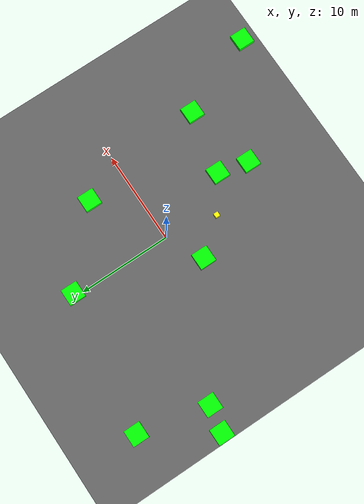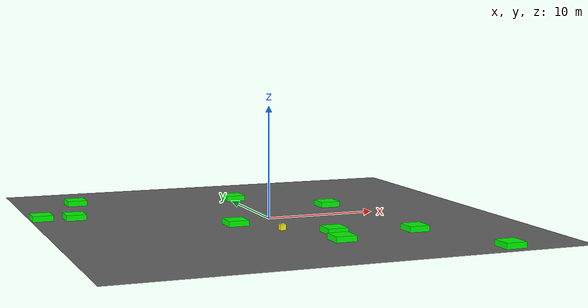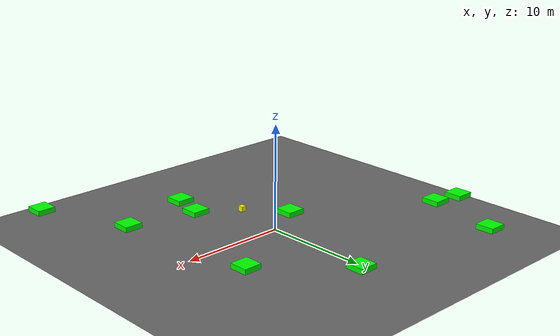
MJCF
<mujoco model="baseline_lvl5_obs10_seed4004">
    <compiler angle="degree" coordinate="local" inertiafromgeom="true"/>
    <option integrator="RK4" timestep="0.01"/>

    <asset>
        <texture builtin="gradient" height="100" rgb1="0.6 0.8 1" rgb2="0 0 0" type="skybox" width="100"/>
        <texture name="floor_texture" type="2d" builtin="checker" width="100" height="100" rgb1="0 0 0" rgb2="0.8 0.8 0.8"/>
        <material name="MatPlane" reflectance="0.5" shininess="1" specular="1" texrepeat="10 10" texture="floor_texture"/>
    </asset>

    <!-- Excluding the contact between the agent and the goal, and the agent and the floor -->
    <contact>
        <exclude body1="agent" body2="goal"/>
        <exclude body1 = "agent" body2 = "floor"/>
    </contact>

    <extension>
        <plugin plugin = "mujoco.pid">
            <instance name = "pid1">
                <config key="kp" value="2"/>
                <config key="ki" value="0"/>
                <config key="kd" value="55"/>
            </instance>
        </plugin>
    </extension>

    <worldbody>
        <light cutoff="100" diffuse="1 1 1" dir="-0 0 -1.3" directional="true" exponent="1" pos="0 0 1.3" specular=".1 .1 .1"/>
        <body name="floor" pos="0 0 0">
            <geom name="floor_geom" type="plane" size="20 20 0.1" material="MatPlane"/>
        </body>

        <!-- Goal -->
        <body name="goal" pos="0.000 0.000 0">
            <geom name="goal_geom" type="plane" size="0.5 0.5 1" pos="0 0 0" rgba="1 0 0 1"/>
        </body>

        <!-- Agent -->
        <body name="agent" pos="-0.931 -5.541 0.25">
            <joint name="j1" type="slide" axis ="1 0 0 "/>
            <joint name="j2" type="slide" axis ="0 1 0 "/>
            <geom name="agent_geom" type="box" size="0.25 0.25 0.250" rgba="1 1 0 1"/>
        </body>

    <body name="obstacle1" pos="0.398 10.831 0.250">
      <geom name="obstacle1_geom" type="box"
            size="0.900 0.900 0.250"
            rgba="0 1 0 1"/>
    </body>
    <body name="obstacle2" pos="-3.830 -1.984 0.250">
      <geom name="obstacle2_geom" type="box"
            size="0.900 0.900 0.250"
            rgba="0 1 0 1"/>
    </body>
    <body name="obstacle3" pos="-19.042 6.218 0.250">
      <geom name="obstacle3_geom" type="box"
            size="0.900 0.900 0.250"
            rgba="0 1 0 1"/>
    </body>
    <body name="obstacle4" pos="9.441 -9.589 0.250">
      <geom name="obstacle4_geom" type="box"
            size="0.900 0.900 0.250"
            rgba="0 1 0 1"/>
    </body>
    <body name="obstacle5" pos="7.486 4.315 0.250">
      <geom name="obstacle5_geom" type="box"
            size="0.900 0.900 0.250"
            rgba="0 1 0 1"/>
    </body>
    <body name="obstacle6" pos="13.167 -18.407 0.250">
      <geom name="obstacle6_geom" type="box"
            size="0.900 0.900 0.250"
            rgba="0 1 0 1"/>
    </body>
    <body name="obstacle7" pos="-16.209 5.665 0.250">
      <geom name="obstacle7_geom" type="box"
            size="0.900 0.900 0.250"
            rgba="0 1 0 1"/>
    </body>
    <body name="obstacle8" pos="1.907 -11.410 0.250">
      <geom name="obstacle8_geom" type="box"
            size="0.900 0.900 0.250"
            rgba="0 1 0 1"/>
    </body>
    <body name="obstacle9" pos="-14.542 13.177 0.250">
      <geom name="obstacle9_geom" type="box"
            size="0.900 0.900 0.250"
            rgba="0 1 0 1"/>
    </body>
    <body name="obstacle10" pos="2.669 -8.133 0.250">
      <geom name="obstacle10_geom" type="box"
            size="0.900 0.900 0.250"
            rgba="0 1 0 1"/>
    </body>
    </worldbody>

    <actuator>
        <plugin joint="j1" plugin="mujoco.pid" instance="pid1" />
        <plugin joint="j2" plugin="mujoco.pid" instance="pid1"/>
    </actuator>

  <sensor>
    <distance name="dist1" geom1="agent_geom" geom2="obstacle1_geom" cutoff="1.5"/>
    <distance name="dist2" geom1="agent_geom" geom2="obstacle2_geom" cutoff="1.5"/>
    <distance name="dist3" geom1="agent_geom" geom2="obstacle3_geom" cutoff="1.5"/>
    <distance name="dist4" geom1="agent_geom" geom2="obstacle4_geom" cutoff="1.5"/>
    <distance name="dist5" geom1="agent_geom" geom2="obstacle5_geom" cutoff="1.5"/>
    <distance name="dist6" geom1="agent_geom" geom2="obstacle6_geom" cutoff="1.5"/>
    <distance name="dist7" geom1="agent_geom" geom2="obstacle7_geom" cutoff="1.5"/>
    <distance name="dist8" geom1="agent_geom" geom2="obstacle8_geom" cutoff="1.5"/>
    <distance name="dist9" geom1="agent_geom" geom2="obstacle9_geom" cutoff="1.5"/>
    <distance name="dist10" geom1="agent_geom" geom2="obstacle10_geom" cutoff="1.5"/>
  </sensor>
</mujoco>
